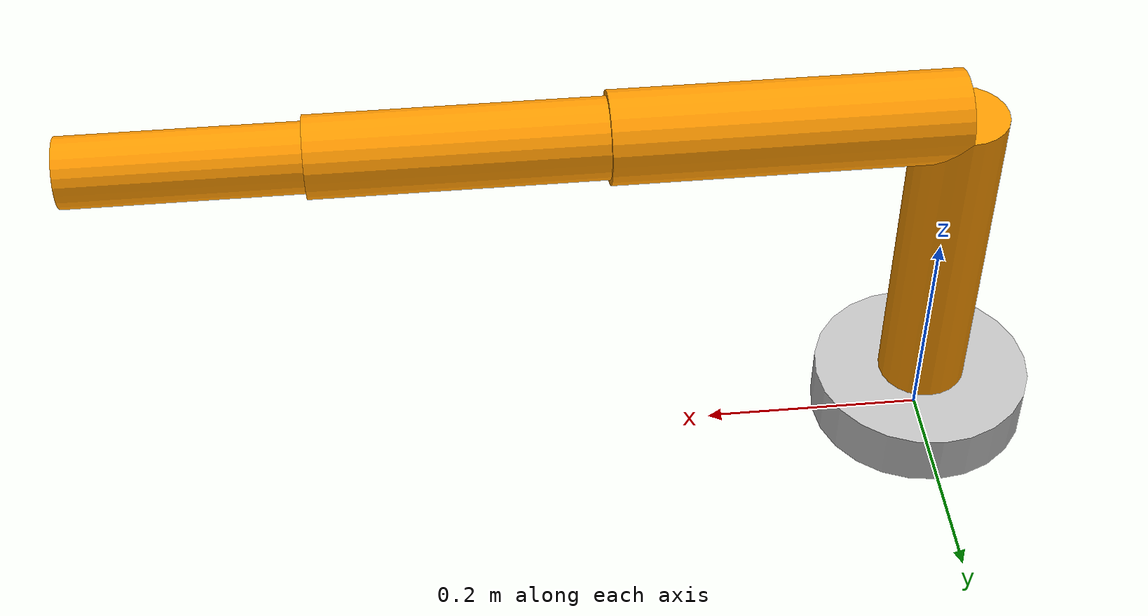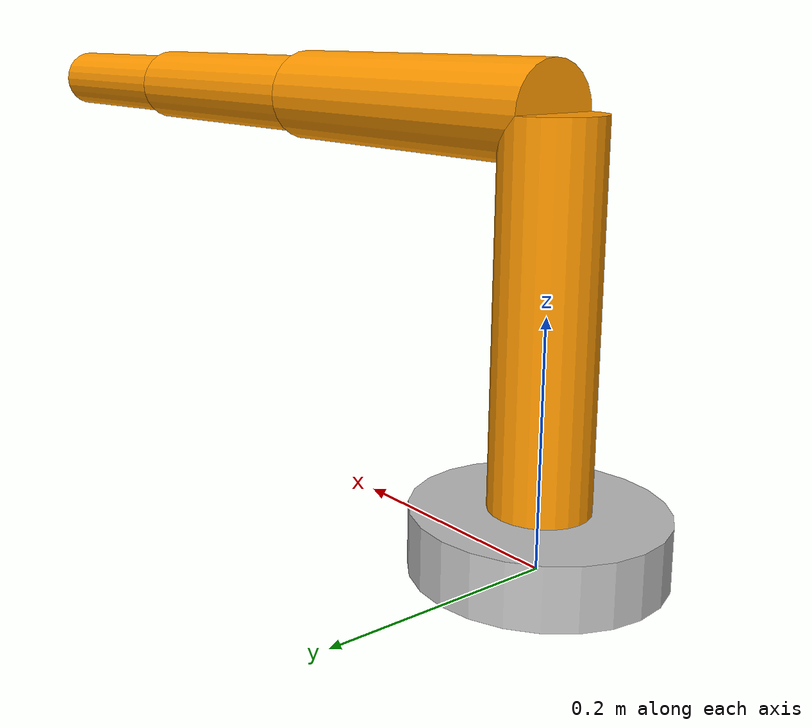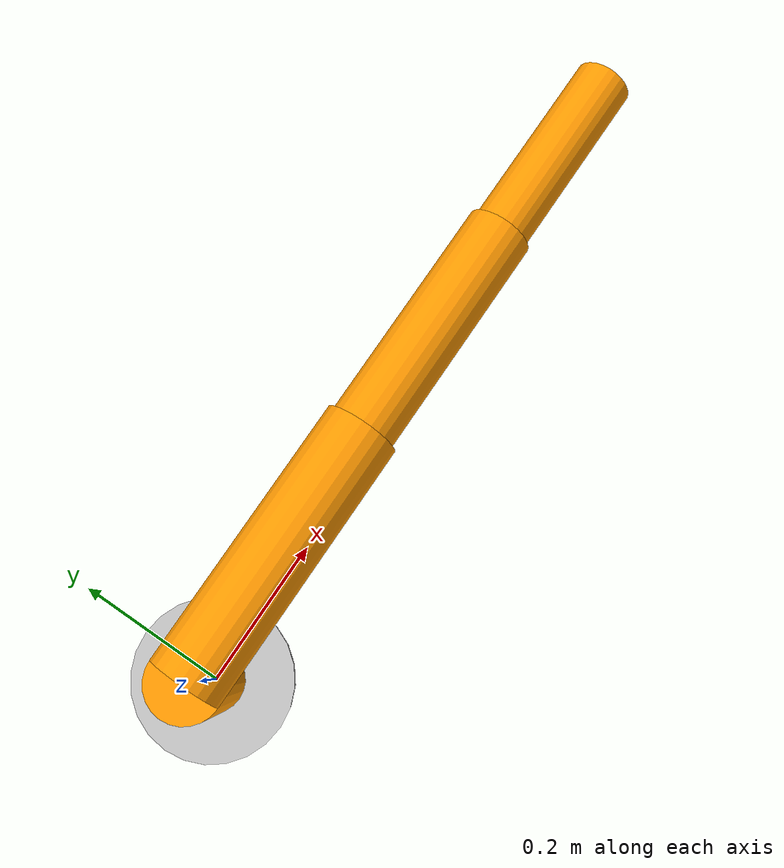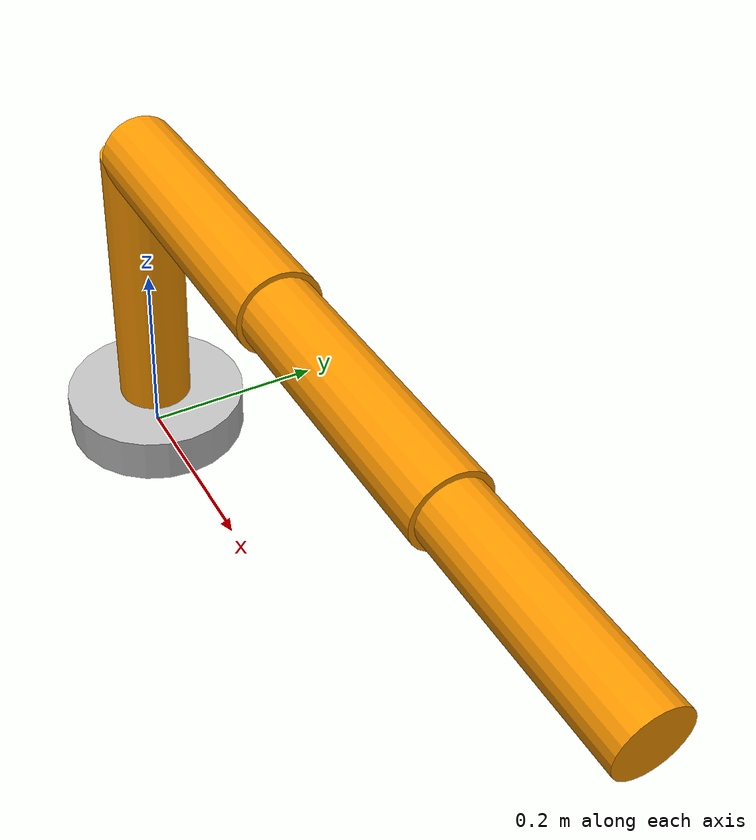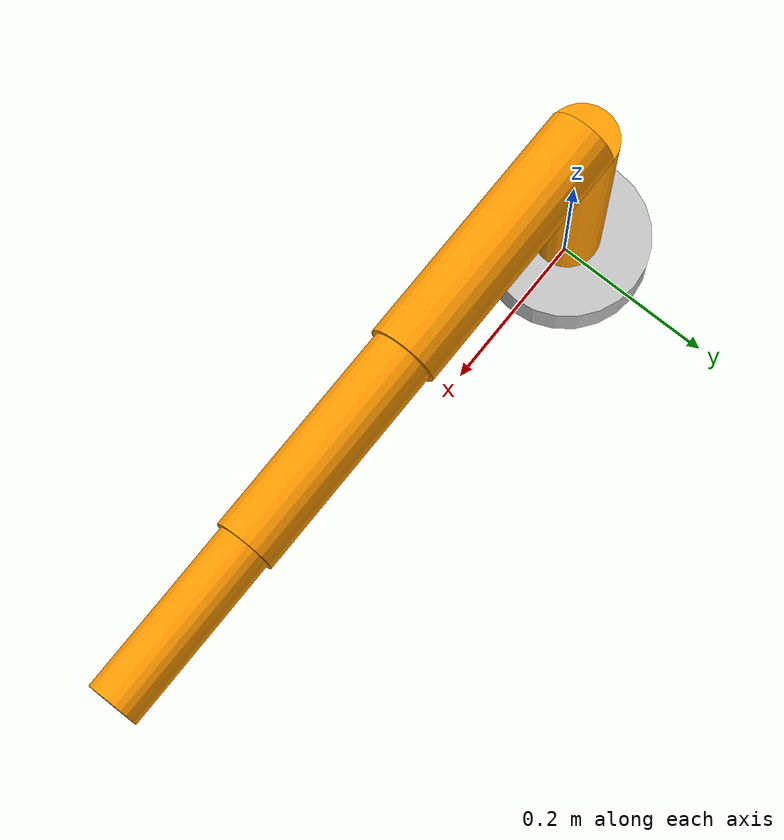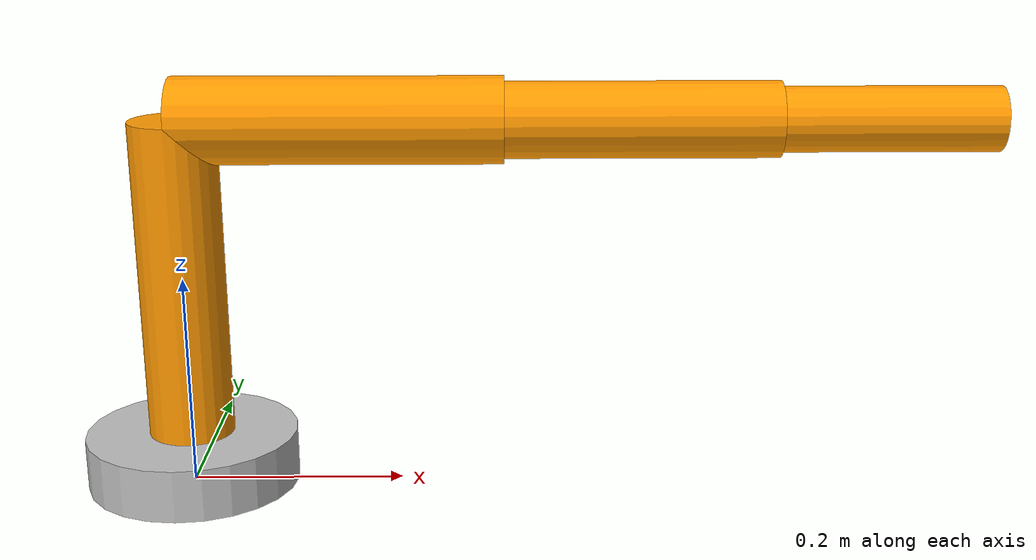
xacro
<?xml version="1.0"?>
<robot name="4dof_arm" xmlns:xacro="http://www.ros.org/wiki/xacro">
    <!-- World link -->
    <link name="world"/>

    <!-- Base Link -->
    <link name="base_link">
        <inertial>
            <mass value="1.0"/>
            <origin rpy="0 0 0" xyz="0 0 0.025"/>
            <inertia ixx="0.0027" iyy="0.0027" izz="0.005" ixy="0" ixz="0" iyz="0"/>
        </inertial>
        <visual>
            <geometry>
                <cylinder length="0.05" radius="0.1"/>
            </geometry>
            <material name="silver">
                <color rgba="0.75 0.75 0.75 1"/>
            </material>
            <origin rpy="0 0 0" xyz="0 0 0.025"/>
        </visual>
        <collision>
            <geometry>
                <cylinder length="0.05" radius="0.1"/>
            </geometry>
            <origin rpy="0 0 0" xyz="0 0 0.025"/>
        </collision>
    </link>

    <!-- Fixed joint connecting world to base_link -->
    <joint name="fixed" type="fixed">
        <parent link="world"/>
        <child link="base_link"/>
    </joint>

    <!-- Link 1 (First vertical link) -->
    <link name="link1">
        <inertial>
            <mass value="1.0"/>
            <origin rpy="0 0 0" xyz="0 0 0.15"/>
            <inertia ixx="0.01396" iyy="0.01396" izz="0.00125" ixy="0" ixz="0" iyz="0"/>
        </inertial>
        <visual>
            <geometry>
                <cylinder length="0.3" radius="0.04"/>
            </geometry>
            <material name="orange">
                <color rgba="1.0 0.6 0.0 1"/>
            </material>
            <origin rpy="0 0 0" xyz="0 0 0.15"/>
        </visual>
        <collision>
            <geometry>
                <cylinder length="0.3" radius="0.04"/>
            </geometry>
            <origin rpy="0 0 0" xyz="0 0 0.15"/>
        </collision>
    </link>

    <!-- Joint 1 (Rotates around Z axis) -->
    <joint name="joint1" type="continuous">
        <axis xyz="0 0 1"/>
        <parent link="base_link"/>
        <child link="link1"/>
        <origin rpy="0 0 0" xyz="0 0 0.05"/>
    </joint>

    <!-- Link 2 (Upper arm) -->
    <link name="link2">
        <inertial>
            <mass value="0.8"/>
            <origin rpy="0 0 0" xyz="0 0 0.15"/>
            <inertia ixx="0.0078" iyy="0.0078" izz="0.0010" ixy="0" ixz="0" iyz="0"/>
        </inertial>
        <visual>
            <geometry>
                <cylinder length="0.3" radius="0.04"/>
            </geometry>
            <material name="orange">
                <color rgba="1.0 0.6 0.0 1"/>
            </material>
            <origin rpy="0 0 0" xyz="0 0 0.15"/>
        </visual>
        <collision>
            <geometry>
                <cylinder length="0.3" radius="0.04"/>
            </geometry>
            <origin rpy="0 0 0" xyz="0 0 0.15"/>
        </collision>
    </link>

    <!-- Joint 2 (Shoulder - rotates around Y axis) -->
    <joint name="joint2" type="revolute">
        <axis xyz="0 1 0"/>
        <limit velocity="1.0" effort="30.0" upper="1.5708" lower="-1.5708"/>
        <parent link="link1"/>
        <child link="link2"/>
        <origin rpy="0 1.5708 0" xyz="0 0 0.3"/>
    </joint>

    <!-- Link 3 (Lower arm) -->
    <link name="link3">
        <inertial>
            <mass value="0.6"/>
            <origin rpy="0 0 0" xyz="0 0 0.125"/>
            <inertia ixx="0.0045" iyy="0.0045" izz="0.0008" ixy="0" ixz="0" iyz="0"/>
        </inertial>
        <visual>
            <geometry>
                <cylinder length="0.25" radius="0.035"/>
            </geometry>
            <material name="orange">
                <color rgba="1.0 0.6 0.0 1"/>
            </material>
            <origin rpy="0 0 0" xyz="0 0 0.125"/>
        </visual>
        <collision>
            <geometry>
                <cylinder length="0.25" radius="0.035"/>
            </geometry>
            <origin rpy="0 0 0" xyz="0 0 0.125"/>
        </collision>
    </link>

    <!-- Joint 3 (Elbow - rotates around Y axis) -->
    <joint name="joint3" type="revolute">
        <axis xyz="0 1 0"/>
        <limit velocity="1.0" effort="30.0" upper="1.5708" lower="-1.5708"/>
        <parent link="link2"/>
        <child link="link3"/>
        <origin rpy="0 0 0" xyz="0 0 0.3"/>
    </joint>

    <!-- Link 4 (End effector) -->
    <link name="end_effector">
        <inertial>
            <mass value="0.4"/>
            <origin rpy="0 0 0" xyz="0 0 0.1"/>
            <inertia ixx="0.0030" iyy="0.0030" izz="0.0006" ixy="0" ixz="0" iyz="0"/>
        </inertial>
        <visual>
            <geometry>
                <cylinder length="0.2" radius="0.03"/>
            </geometry>
            <material name="orange">
                <color rgba="1.0 0.6 0.0 1"/>
            </material>
            <origin rpy="0 0 0" xyz="0 0 0.1"/>
        </visual>
        <collision>
            <geometry>
                <cylinder length="0.2" radius="0.03"/>
            </geometry>
            <origin rpy="0 0 0" xyz="0 0 0.1"/>
        </collision>
    </link>

    <!-- Joint 4 (Wrist - rotates around Z axis) -->
    <joint name="joint4" type="continuous">
        <axis xyz="0 0 1"/>
        <parent link="link3"/>
        <child link="end_effector"/>
        <origin rpy="0 0 0" xyz="0 0 0.25"/>
    </joint>

    <!-- Transmissions for ROS control -->
    <transmission name="tran1">
        <type>transmission_interface/SimpleTransmission</type>
        <joint name="joint1">
            <hardwareInterface>hardware_interface/PositionJointInterface</hardwareInterface>
        </joint>
        <actuator name="motor1">
            <hardwareInterface>hardware_interface/PositionJointInterface</hardwareInterface>
            <mechanicalReduction>1</mechanicalReduction>
        </actuator>
    </transmission>

    <transmission name="tran2">
        <type>transmission_interface/SimpleTransmission</type>
        <joint name="joint2">
            <hardwareInterface>hardware_interface/PositionJointInterface</hardwareInterface>
        </joint>
        <actuator name="motor2">
            <hardwareInterface>hardware_interface/PositionJointInterface</hardwareInterface>
            <mechanicalReduction>1</mechanicalReduction>
        </actuator>
    </transmission>

    <transmission name="tran3">
        <type>transmission_interface/SimpleTransmission</type>
        <joint name="joint3">
            <hardwareInterface>hardware_interface/PositionJointInterface</hardwareInterface>
        </joint>
        <actuator name="motor3">
            <hardwareInterface>hardware_interface/PositionJointInterface</hardwareInterface>
            <mechanicalReduction>1</mechanicalReduction>
        </actuator>
    </transmission>

    <transmission name="tran4">
        <type>transmission_interface/SimpleTransmission</type>
        <joint name="joint4">
            <hardwareInterface>hardware_interface/PositionJointInterface</hardwareInterface>
        </joint>
        <actuator name="motor4">
            <hardwareInterface>hardware_interface/PositionJointInterface</hardwareInterface>
            <mechanicalReduction>1</mechanicalReduction>
        </actuator>
    </transmission>

    <!-- Gazebo plugins for ROS2 control -->
    <gazebo>
        <plugin name="control" filename="libgazebo_ros_control.so"/>
    </gazebo>
    <gazebo>
        <plugin name="joint_state_publisher" filename="libgazebo_ros_joint_state_publisher.so">
            <jointName>joint1, joint2, joint3, joint4</jointName>
        </plugin>
    </gazebo>
</robot>
